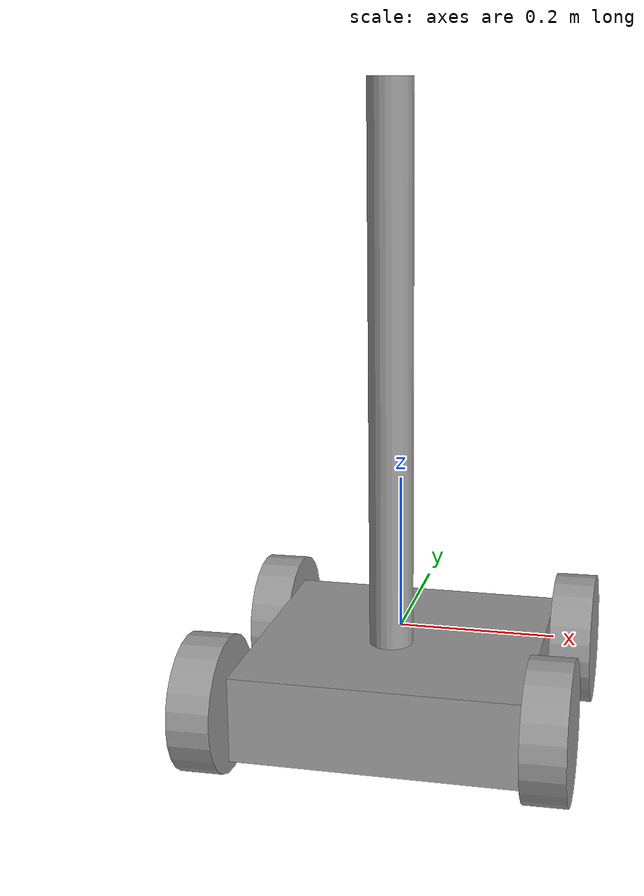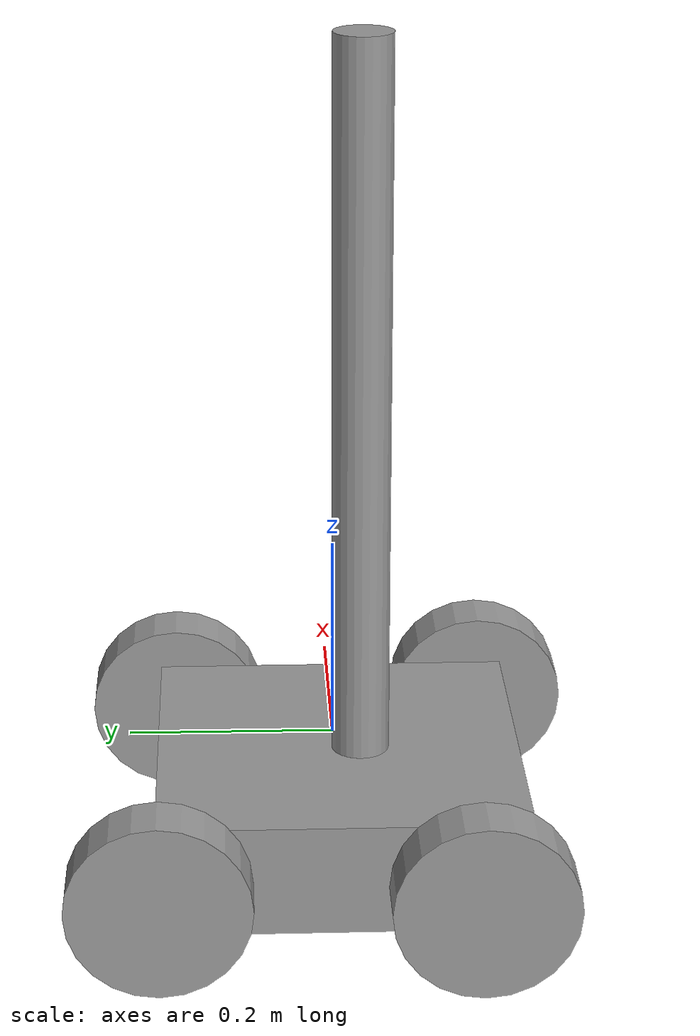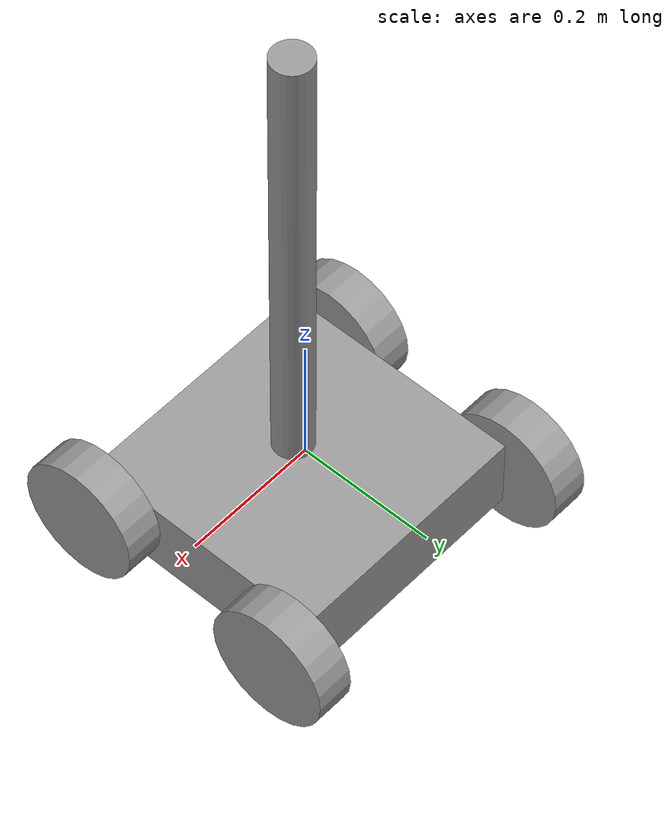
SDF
<?xml version='1.0'?>
<sdf version='1.6'>
  <model name='rover'>
    <link name='link_0'>
      <inertial>
        <mass>0.0144661</mass>
        <inertia>
          <ixx>0.000168733</ixx>
          <ixy>0</ixy>
          <ixz>0</ixz>
          <iyy>0.000175775</iyy>
          <iyz>0</iyz>
          <izz>0.000314929</izz>
        </inertia>
        <pose frame=''>0 0 0 0 -0 0</pose>
      </inertial>
      <pose frame=''>0.003365 -0.005413 -0.069052 0 -0 0</pose>
      <visual name='visual'>
        <pose frame=''>0 0 0 0 -0 0</pose>
        <geometry>
          <box>
            <size>0.365433 0.357351 0.110761</size>
          </box>
        </geometry>
        <material>
          <lighting>1</lighting>
          <script>
            <uri>file://media/materials/scripts/gazebo.material</uri>
            <name>Gazebo/Grey</name>
          </script>
          <emissive>0 0 0 1</emissive>
        </material>
        <transparency>0</transparency>
        <cast_shadows>1</cast_shadows>
      </visual>
      <collision name='collision'>
        <laser_retro>0</laser_retro>
        <max_contacts>10</max_contacts>
        <pose frame=''>0 0 0 0 -0 0</pose>
        <geometry>
          <box>
            <size>0.365433 0.357351 0.110761</size>
          </box>
        </geometry>
        <surface>
          <friction>
            <ode>
              <mu>1</mu>
              <mu2>1</mu2>
              <fdir1>0 0 0</fdir1>
              <slip1>0</slip1>
              <slip2>0</slip2>
            </ode>
            <torsional>
              <coefficient>1</coefficient>
              <patch_radius>0</patch_radius>
              <surface_radius>0</surface_radius>
              <use_patch_radius>1</use_patch_radius>
              <ode>
                <slip>0</slip>
              </ode>
            </torsional>
          </friction>
          <bounce>
            <restitution_coefficient>0</restitution_coefficient>
            <threshold>1e+06</threshold>
          </bounce>
          <contact>
            <collide_without_contact>0</collide_without_contact>
            <collide_without_contact_bitmask>1</collide_without_contact_bitmask>
            <collide_bitmask>1</collide_bitmask>
            <ode>
              <soft_cfm>0</soft_cfm>
              <soft_erp>0.2</soft_erp>
              <kp>1e+13</kp>
              <kd>1</kd>
              <max_vel>0.01</max_vel>
              <min_depth>0</min_depth>
            </ode>
            <bullet>
              <split_impulse>1</split_impulse>
              <split_impulse_penetration_threshold>-0.01</split_impulse_penetration_threshold>
              <soft_cfm>0</soft_cfm>
              <soft_erp>0.2</soft_erp>
              <kp>1e+13</kp>
              <kd>1</kd>
            </bullet>
          </contact>
        </surface>
      </collision>
    </link>
    <link name='link_1'>
      <inertial>
        <mass>0.00170822</mass>
        <inertia>
          <ixx>3.75408e-06</ixx>
          <ixy>0</ixy>
          <ixz>0</ixz>
          <iyy>3.75408e-06</iyy>
          <iyz>0</iyz>
          <izz>6.65238e-06</izz>
        </inertia>
        <pose frame=''>0 0 0 0 -0 0</pose>
      </inertial>
      <pose frame=''>0.214634 -0.160607 -0.054321 0 1.56136 0</pose>
      <visual name='visual'>
        <pose frame=''>0 0 0 0 -0 0</pose>
        <geometry>
          <cylinder>
            <radius>0.0882535</radius>
            <length>0.0548257</length>
          </cylinder>
        </geometry>
        <material>
          <lighting>1</lighting>
          <script>
            <uri>file://media/materials/scripts/gazebo.material</uri>
            <name>Gazebo/Grey</name>
          </script>
          <emissive>0 0 0 1</emissive>
        </material>
        <transparency>0</transparency>
        <cast_shadows>1</cast_shadows>
      </visual>
      <collision name='collision'>
        <laser_retro>0</laser_retro>
        <max_contacts>10</max_contacts>
        <pose frame=''>0 0 0 0 -0 0</pose>
        <geometry>
          <cylinder>
            <radius>0.088254</radius>
            <length>0.054826</length>
          </cylinder>
        </geometry>
        <surface>
          <friction>
            <ode>
              <mu>1</mu>
              <mu2>1</mu2>
              <fdir1>0 0 0</fdir1>
              <slip1>0</slip1>
              <slip2>0</slip2>
            </ode>
            <torsional>
              <coefficient>1</coefficient>
              <patch_radius>0</patch_radius>
              <surface_radius>0</surface_radius>
              <use_patch_radius>1</use_patch_radius>
              <ode>
                <slip>0</slip>
              </ode>
            </torsional>
          </friction>
          <bounce>
            <restitution_coefficient>0</restitution_coefficient>
            <threshold>1e+06</threshold>
          </bounce>
          <contact>
            <collide_without_contact>0</collide_without_contact>
            <collide_without_contact_bitmask>1</collide_without_contact_bitmask>
            <collide_bitmask>1</collide_bitmask>
            <ode>
              <soft_cfm>0</soft_cfm>
              <soft_erp>0.2</soft_erp>
              <kp>1e+13</kp>
              <kd>1</kd>
              <max_vel>0.01</max_vel>
              <min_depth>0</min_depth>
            </ode>
            <bullet>
              <split_impulse>1</split_impulse>
              <split_impulse_penetration_threshold>-0.01</split_impulse_penetration_threshold>
              <soft_cfm>0</soft_cfm>
              <soft_erp>0.2</soft_erp>
              <kp>1e+13</kp>
              <kd>1</kd>
            </bullet>
          </contact>
        </surface>
      </collision>
    </link>
    <link name='link_1_clone'>
      <inertial>
        <mass>0.00170822</mass>
        <inertia>
          <ixx>3.75408e-06</ixx>
          <ixy>0</ixy>
          <ixz>0</ixz>
          <iyy>3.75408e-06</iyy>
          <iyz>0</iyz>
          <izz>6.65238e-06</izz>
        </inertia>
        <pose frame=''>0 0 0 0 -0 0</pose>
      </inertial>
      <pose frame=''>0.215635 0.157274 -0.063137 0 1.56136 0</pose>
      <visual name='visual'>
        <pose frame=''>0 0 0 0 -0 0</pose>
        <geometry>
          <cylinder>
            <radius>0.0882535</radius>
            <length>0.0548257</length>
          </cylinder>
        </geometry>
        <material>
          <lighting>1</lighting>
          <script>
            <uri>file://media/materials/scripts/gazebo.material</uri>
            <name>Gazebo/Grey</name>
          </script>
          <shader type='pixel'/>
          <emissive>0 0 0 1</emissive>
        </material>
        <transparency>0</transparency>
        <cast_shadows>1</cast_shadows>
      </visual>
      <collision name='collision'>
        <laser_retro>0</laser_retro>
        <max_contacts>10</max_contacts>
        <pose frame=''>0 0 0 0 -0 0</pose>
        <geometry>
          <cylinder>
            <radius>0.088253</radius>
            <length>0.054826</length>
          </cylinder>
        </geometry>
        <surface>
          <friction>
            <ode>
              <mu>1</mu>
              <mu2>1</mu2>
              <fdir1>0 0 0</fdir1>
              <slip1>0</slip1>
              <slip2>0</slip2>
            </ode>
            <torsional>
              <coefficient>1</coefficient>
              <patch_radius>0</patch_radius>
              <surface_radius>0</surface_radius>
              <use_patch_radius>1</use_patch_radius>
              <ode>
                <slip>0</slip>
              </ode>
            </torsional>
          </friction>
          <bounce>
            <restitution_coefficient>0</restitution_coefficient>
            <threshold>1e+06</threshold>
          </bounce>
          <contact>
            <collide_without_contact>0</collide_without_contact>
            <collide_without_contact_bitmask>1</collide_without_contact_bitmask>
            <collide_bitmask>1</collide_bitmask>
            <ode>
              <soft_cfm>0</soft_cfm>
              <soft_erp>0.2</soft_erp>
              <kp>1e+13</kp>
              <kd>1</kd>
              <max_vel>0.01</max_vel>
              <min_depth>0</min_depth>
            </ode>
            <bullet>
              <split_impulse>1</split_impulse>
              <split_impulse_penetration_threshold>-0.01</split_impulse_penetration_threshold>
              <soft_cfm>0</soft_cfm>
              <soft_erp>0.2</soft_erp>
              <kp>1e+13</kp>
              <kd>1</kd>
            </bullet>
          </contact>
        </surface>
      </collision>
    </link>
    <link name='link_1_clone_0'>
      <inertial>
        <mass>0.00170822</mass>
        <inertia>
          <ixx>3.75408e-06</ixx>
          <ixy>0</ixy>
          <ixz>0</ixz>
          <iyy>3.75408e-06</iyy>
          <iyz>0</iyz>
          <izz>6.65238e-06</izz>
        </inertia>
        <pose frame=''>0 0 0 0 -0 0</pose>
      </inertial>
      <pose frame=''>-0.218547 -0.133932 -0.070419 0 1.56136 0</pose>
      <visual name='visual'>
        <pose frame=''>0 0 0 0 -0 0</pose>
        <geometry>
          <cylinder>
            <radius>0.0882535</radius>
            <length>0.0548257</length>
          </cylinder>
        </geometry>
        <material>
          <lighting>1</lighting>
          <script>
            <uri>file://media/materials/scripts/gazebo.material</uri>
            <name>Gazebo/Grey</name>
          </script>
          <shader type='pixel'/>
          <emissive>0 0 0 1</emissive>
        </material>
        <transparency>0</transparency>
        <cast_shadows>1</cast_shadows>
      </visual>
      <collision name='collision'>
        <laser_retro>0</laser_retro>
        <max_contacts>10</max_contacts>
        <pose frame=''>0 0 0 0 -0 0</pose>
        <geometry>
          <cylinder>
            <radius>0.088253</radius>
            <length>0.054826</length>
          </cylinder>
        </geometry>
        <surface>
          <friction>
            <ode>
              <mu>1</mu>
              <mu2>1</mu2>
              <fdir1>0 0 0</fdir1>
              <slip1>0</slip1>
              <slip2>0</slip2>
            </ode>
            <torsional>
              <coefficient>1</coefficient>
              <patch_radius>0</patch_radius>
              <surface_radius>0</surface_radius>
              <use_patch_radius>1</use_patch_radius>
              <ode>
                <slip>0</slip>
              </ode>
            </torsional>
          </friction>
          <bounce>
            <restitution_coefficient>0</restitution_coefficient>
            <threshold>1e+06</threshold>
          </bounce>
          <contact>
            <collide_without_contact>0</collide_without_contact>
            <collide_without_contact_bitmask>1</collide_without_contact_bitmask>
            <collide_bitmask>1</collide_bitmask>
            <ode>
              <soft_cfm>0</soft_cfm>
              <soft_erp>0.2</soft_erp>
              <kp>1e+13</kp>
              <kd>1</kd>
              <max_vel>0.01</max_vel>
              <min_depth>0</min_depth>
            </ode>
            <bullet>
              <split_impulse>1</split_impulse>
              <split_impulse_penetration_threshold>-0.01</split_impulse_penetration_threshold>
              <soft_cfm>0</soft_cfm>
              <soft_erp>0.2</soft_erp>
              <kp>1e+13</kp>
              <kd>1</kd>
            </bullet>
          </contact>
        </surface>
      </collision>
    </link>
    <link name='link_1_clone_0_clone'>
      <inertial>
        <mass>0.00170822</mass>
        <inertia>
          <ixx>3.75408e-06</ixx>
          <ixy>0</ixy>
          <ixz>0</ixz>
          <iyy>3.75408e-06</iyy>
          <iyz>0</iyz>
          <izz>6.65238e-06</izz>
        </inertia>
        <pose frame=''>0 0 0 0 -0 0</pose>
      </inertial>
      <pose frame=''>-0.207795 0.169594 -0.069814 0 1.56136 0</pose>
      <visual name='visual'>
        <pose frame=''>0 0 0 0 -0 0</pose>
        <geometry>
          <cylinder>
            <radius>0.0882535</radius>
            <length>0.0548257</length>
          </cylinder>
        </geometry>
        <material>
          <lighting>1</lighting>
          <script>
            <uri>file://media/materials/scripts/gazebo.material</uri>
            <name>Gazebo/Grey</name>
          </script>
          <shader type='pixel'/>
          <emissive>0 0 0 1</emissive>
        </material>
        <transparency>0</transparency>
        <cast_shadows>1</cast_shadows>
      </visual>
      <collision name='collision'>
        <laser_retro>0</laser_retro>
        <max_contacts>10</max_contacts>
        <pose frame=''>0 0 0 0 -0 0</pose>
        <geometry>
          <cylinder>
            <radius>0.088253</radius>
            <length>0.054826</length>
          </cylinder>
        </geometry>
        <surface>
          <friction>
            <ode>
              <mu>1</mu>
              <mu2>1</mu2>
              <fdir1>0 0 0</fdir1>
              <slip1>0</slip1>
              <slip2>0</slip2>
            </ode>
            <torsional>
              <coefficient>1</coefficient>
              <patch_radius>0</patch_radius>
              <surface_radius>0</surface_radius>
              <use_patch_radius>1</use_patch_radius>
              <ode>
                <slip>0</slip>
              </ode>
            </torsional>
          </friction>
          <bounce>
            <restitution_coefficient>0</restitution_coefficient>
            <threshold>1e+06</threshold>
          </bounce>
          <contact>
            <collide_without_contact>0</collide_without_contact>
            <collide_without_contact_bitmask>1</collide_without_contact_bitmask>
            <collide_bitmask>1</collide_bitmask>
            <ode>
              <soft_cfm>0</soft_cfm>
              <soft_erp>0.2</soft_erp>
              <kp>1e+13</kp>
              <kd>1</kd>
              <max_vel>0.01</max_vel>
              <min_depth>0</min_depth>
            </ode>
            <bullet>
              <split_impulse>1</split_impulse>
              <split_impulse_penetration_threshold>-0.01</split_impulse_penetration_threshold>
              <soft_cfm>0</soft_cfm>
              <soft_erp>0.2</soft_erp>
              <kp>1e+13</kp>
              <kd>1</kd>
            </bullet>
          </contact>
        </surface>
      </collision>
    </link>
    <link name='link_2'>
      <inertial>
        <mass>0.00240187</mass>
        <inertia>
          <ixx>0.000110523</ixx>
          <ixy>0</ixy>
          <ixz>0</ixz>
          <iyy>0.000110523</iyy>
          <iyz>0</iyz>
          <izz>9.62114e-07</izz>
        </inertia>
        <pose frame=''>0 0 0 0 -0 0</pose>
      </inertial>
      <pose frame=''>-0.007292 -0.026916 0.326743 0 -0 0</pose>
      <visual name='visual'>
        <pose frame=''>0 0 0 0 -0 0</pose>
        <geometry>
          <cylinder>
            <radius>0.0283044</radius>
            <length>0.741472</length>
          </cylinder>
        </geometry>
        <material>
          <lighting>1</lighting>
          <script>
            <uri>file://media/materials/scripts/gazebo.material</uri>
            <name>Gazebo/Grey</name>
          </script>
          <emissive>0 0 0 1</emissive>
        </material>
        <transparency>0</transparency>
        <cast_shadows>1</cast_shadows>
      </visual>
      <collision name='collision'>
        <laser_retro>0</laser_retro>
        <max_contacts>10</max_contacts>
        <pose frame=''>0 0 0 0 -0 0</pose>
        <geometry>
          <cylinder>
            <radius>0.028304</radius>
            <length>0.741472</length>
          </cylinder>
        </geometry>
        <surface>
          <friction>
            <ode>
              <mu>1</mu>
              <mu2>1</mu2>
              <fdir1>0 0 0</fdir1>
              <slip1>0</slip1>
              <slip2>0</slip2>
            </ode>
            <torsional>
              <coefficient>1</coefficient>
              <patch_radius>0</patch_radius>
              <surface_radius>0</surface_radius>
              <use_patch_radius>1</use_patch_radius>
              <ode>
                <slip>0</slip>
              </ode>
            </torsional>
          </friction>
          <bounce>
            <restitution_coefficient>0</restitution_coefficient>
            <threshold>1e+06</threshold>
          </bounce>
          <contact>
            <collide_without_contact>0</collide_without_contact>
            <collide_without_contact_bitmask>1</collide_without_contact_bitmask>
            <collide_bitmask>1</collide_bitmask>
            <ode>
              <soft_cfm>0</soft_cfm>
              <soft_erp>0.2</soft_erp>
              <kp>1e+13</kp>
              <kd>1</kd>
              <max_vel>0.01</max_vel>
              <min_depth>0</min_depth>
            </ode>
            <bullet>
              <split_impulse>1</split_impulse>
              <split_impulse_penetration_threshold>-0.01</split_impulse_penetration_threshold>
              <soft_cfm>0</soft_cfm>
              <soft_erp>0.2</soft_erp>
              <kp>1e+13</kp>
              <kd>1</kd>
            </bullet>
          </contact>
        </surface>
      </collision>
    </link>
    <joint name='link_0_JOINT_0' type='fixed'>
      <parent>link_0</parent>
      <child>link_2</child>
      <pose frame=''>0 0 0 0 -0 0</pose>
      <physics>
        <ode>
          <limit>
            <cfm>0</cfm>
            <erp>0.2</erp>
          </limit>
          <suspension>
            <cfm>0</cfm>
            <erp>0.2</erp>
          </suspension>
        </ode>
      </physics>
    </joint>
    <joint name='link_0_JOINT_2' type='revolute'>
      <parent>link_0</parent>
      <child>link_1</child>
      <pose frame=''>0 0 0 0 -0 0</pose>
      <axis>
        <xyz>0 0 1</xyz>
        <use_parent_model_frame>0</use_parent_model_frame>
        <limit>
          <lower>-1.79769e+308</lower>
          <upper>1.79769e+308</upper>
          <effort>-1</effort>
          <velocity>-1</velocity>
        </limit>
        <dynamics>
          <spring_reference>0</spring_reference>
          <spring_stiffness>0</spring_stiffness>
          <damping>0</damping>
        </dynamics>
      </axis>
      <physics>
        <ode>
          <limit>
            <cfm>0</cfm>
            <erp>0.2</erp>
          </limit>
          <suspension>
            <cfm>0</cfm>
            <erp>0.2</erp>
          </suspension>
        </ode>
      </physics>
    </joint>
    <joint name='link_0_JOINT_3' type='revolute'>
      <parent>link_0</parent>
      <child>link_1_clone</child>
      <pose frame=''>0 0 0 0 -0 0</pose>
      <axis>
        <xyz>0 0 1</xyz>
        <use_parent_model_frame>0</use_parent_model_frame>
        <limit>
          <lower>-1.79769e+308</lower>
          <upper>1.79769e+308</upper>
          <effort>-1</effort>
          <velocity>-1</velocity>
        </limit>
        <dynamics>
          <spring_reference>0</spring_reference>
          <spring_stiffness>0</spring_stiffness>
          <damping>0</damping>
        </dynamics>
      </axis>
      <physics>
        <ode>
          <limit>
            <cfm>0</cfm>
            <erp>0.2</erp>
          </limit>
          <suspension>
            <cfm>0</cfm>
            <erp>0.2</erp>
          </suspension>
        </ode>
      </physics>
    </joint>
    <joint name='link_0_JOINT_4' type='revolute'>
      <parent>link_0</parent>
      <child>link_1_clone_0</child>
      <pose frame=''>0 0 0 0 -0 0</pose>
      <axis>
        <xyz>0 0 1</xyz>
        <use_parent_model_frame>0</use_parent_model_frame>
        <limit>
          <lower>-1.79769e+308</lower>
          <upper>1.79769e+308</upper>
          <effort>-1</effort>
          <velocity>-1</velocity>
        </limit>
        <dynamics>
          <spring_reference>0</spring_reference>
          <spring_stiffness>0</spring_stiffness>
          <damping>0</damping>
        </dynamics>
      </axis>
      <physics>
        <ode>
          <limit>
            <cfm>0</cfm>
            <erp>0.2</erp>
          </limit>
          <suspension>
            <cfm>0</cfm>
            <erp>0.2</erp>
          </suspension>
        </ode>
      </physics>
    </joint>
    <joint name='link_0_JOINT_5' type='revolute'>
      <parent>link_0</parent>
      <child>link_1_clone_0_clone</child>
      <pose frame=''>0 0 0 0 -0 0</pose>
      <axis>
        <xyz>0 0 1</xyz>
        <use_parent_model_frame>0</use_parent_model_frame>
        <limit>
          <lower>-1.79769e+308</lower>
          <upper>1.79769e+308</upper>
          <effort>-1</effort>
          <velocity>-1</velocity>
        </limit>
        <dynamics>
          <spring_reference>0</spring_reference>
          <spring_stiffness>0</spring_stiffness>
          <damping>0</damping>
        </dynamics>
      </axis>
      <physics>
        <ode>
          <limit>
            <cfm>0</cfm>
            <erp>0.2</erp>
          </limit>
          <suspension>
            <cfm>0</cfm>
            <erp>0.2</erp>
          </suspension>
        </ode>
      </physics>
    </joint>
    <static>0</static>
    <allow_auto_disable>1</allow_auto_disable>
  </model>
</sdf>
